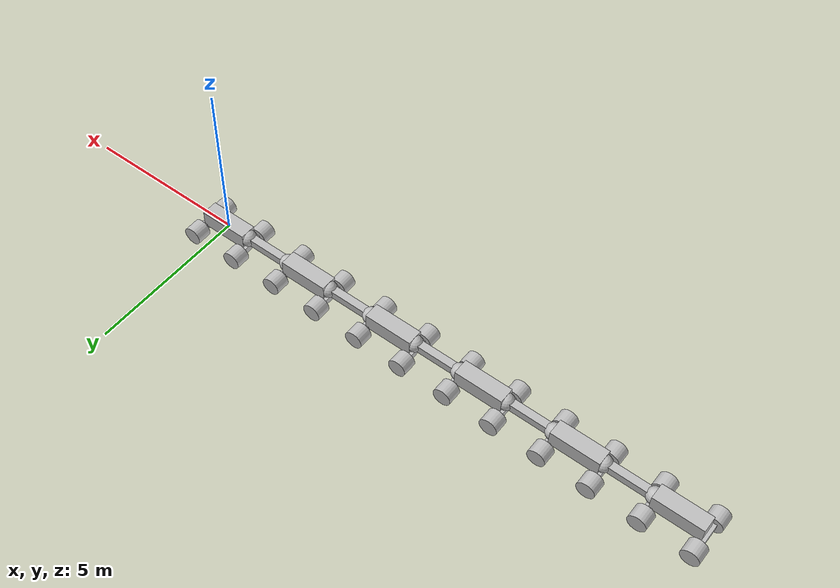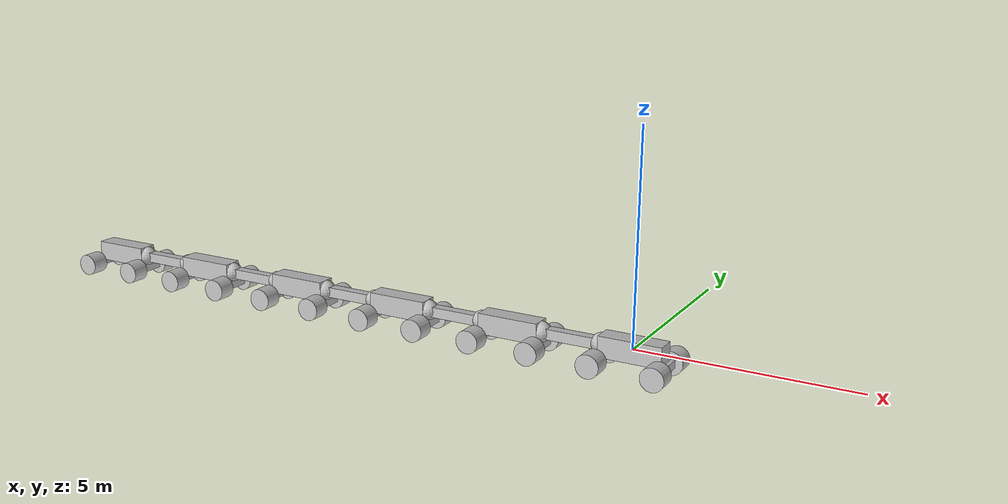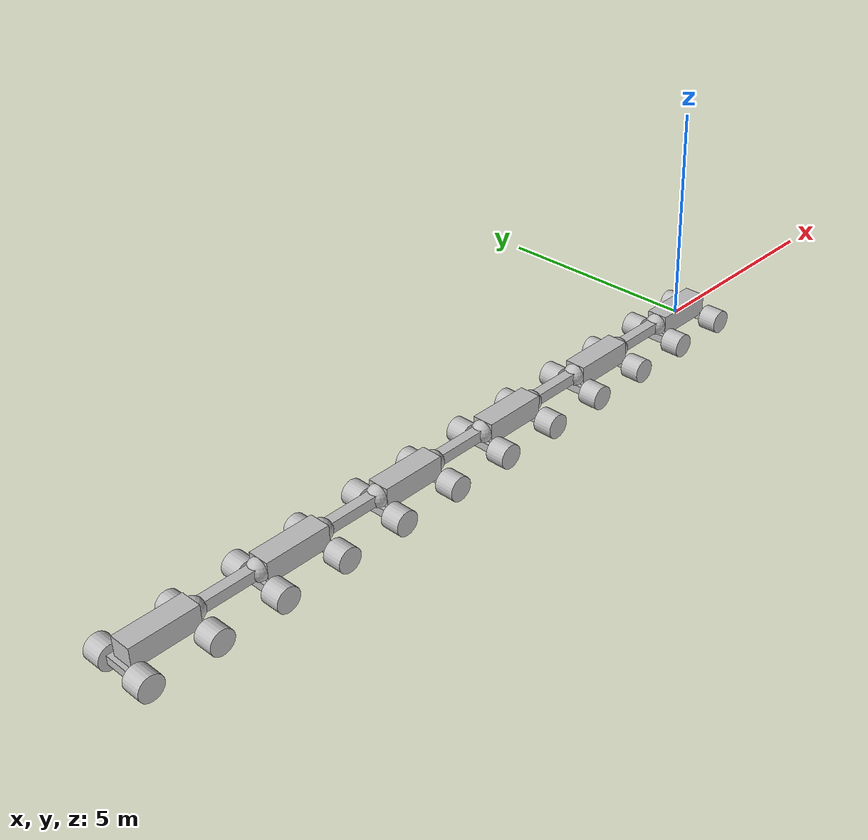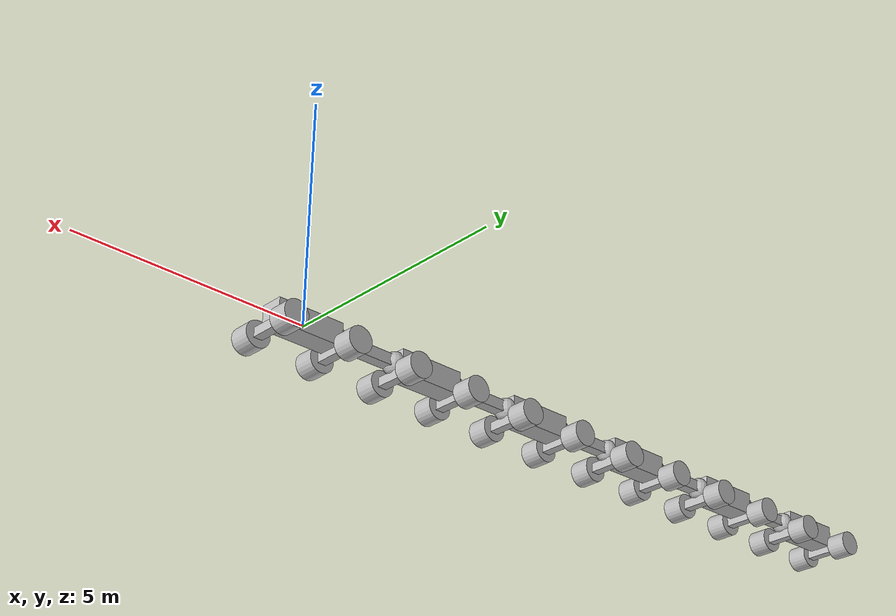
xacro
<?xml version='1.0'?>
<robot xmlns:xacro="http://www.ros.org/wiki/xacro" name="train3">

 <xacro:property name="axel_offset" value="0.75" />
 <xacro:property name="axel_offset2" value="-0.75" />
 <xacro:property name="axel_z_offset" value="-0.3" />

 <xacro:property name="connector_x" value="1.5" />
 <xacro:property name="connector_y" value="0.25" />
 <xacro:property name="connector_z" value="0.25" />
 <xacro:property name="connector_mass" value="5" />

 <xacro:property name="body_x" value="1.5" />
 <xacro:property name="body_y" value="0.5" />
 <xacro:property name="body_z" value="0.5" />
 <xacro:property name="body_mass" value="30" />

 <xacro:property name="axle_x" value="0.2" />
 <!-- actual axle y distance -->
 <!--xacro:property name="axle_y" value="1.15052" /-->
 <xacro:property name="axle_y" value="1.15052" />
 <xacro:property name="axle_z" value="0.2" />
 <xacro:property name="axle_mass" value="15" />

 <xacro:property name="dummy_radius" value="0.25" />
  <xacro:property name="pi2" value="1.570796" />

 <xacro:macro name="wheel_gazebo_macro" params="reference">
 <gazebo reference="${reference}">
   <mu1>0.0</mu1>
   <mu2>0.5</mu2>
   <fdir1>1 0 0</fdir1>
   <!-- contact sensor -->
   <sensor type="contact" name="${reference}_contact_sensor">
     <update_rate>1000.0</update_rate>
     <always_on>true</always_on>
     <contact>
       <collision>${reference}_collision</collision>
     </contact>
     <plugin name="lside_bumper_plugin" filename="libgazebo_ros_bumper.so">
       <bumperTopicName>bumper_${reference}</bumperTopicName>
       <frameName>World</frameName>
      </plugin>
   </sensor>
 </gazebo>
 </xacro:macro>

  <xacro:macro name="wheel_macro" params="name model">
    <link name="${name}">
     <inertial>
      <mass value="7.5"/>
      <origin rpy="0 0 0" xyz="0 0 0"/>
      <inertia ixx="0.49" ixy="0" ixz="0" iyy="0.49" iyz="0" izz="0.49"/>
     </inertial>
     <collision>
       <origin xyz="0 0 0" rpy="0 ${pi2} ${pi2}"/>
       <laser_retro>0</laser_retro>
       <max_contacts>10</max_contacts>
       <pose >0 0 0 0 0 0</pose>
       <geometry>
         <cylinder length="0.45" radius="0.28"/>
       </geometry>
     </collision>
     <visual name="visual">
      <origin rpy="0 ${pi2} ${pi2}" xyz="0 0 0"/>
      <geometry>
       <!--mesh filename="package://ros_robotics/meshes/${model}" scale="1 1 1"/-->
       <cylinder length="0.45" radius="0.28"/>
      </geometry>
      <material name="silver">
       <color rgba="0.75 0.75 0.75 1"/>
      </material>
     </visual>
    </link>
    <xacro:wheel_gazebo_macro reference="${name}"/>
  </xacro:macro>

 <xacro:macro name="pivot_joint_macro" params="xyz name parent child">
  <joint name="${name}" type="revolute">
   <parent link="${parent}"/>
   <child link="${child}"/>
   <origin rpy="0 0 0" xyz="${xyz}"/>
   <axis xyz="0  0  1"/>
   <limit effort="1000" lower="-0.003" upper="0.003" velocity="10"/>
   <dynamics damping="5" friction="1"/>
   <!--limit effort="-1" lower="-0.001" upper="0.001" velocity="-1"/-->
  </joint>
  <xacro:trans_macro name="${name}"/>
 </xacro:macro>

 <xacro:macro name="pivot_joint_roll_macro" params="xyz name parent child">
  <joint name="${name}" type="revolute">
   <parent link="${parent}"/>
   <child link="${child}"/>
   <origin rpy="0 0 0" xyz="${xyz}"/>
   <axis xyz="1  0  0"/>
   <limit effort="1000" lower="-0.1" upper="0.1" velocity="5"/>
   <dynamics damping="20" friction="0"/>
   <!--limit effort="-1" lower="-0.001" upper="0.001" velocity="-1"/-->
  </joint>
 </xacro:macro>

 <xacro:macro name="fixed_pivot_joint_roll_macro" params="xyz name parent child">
  <joint name="${name}" type="revolute">
   <parent link="${parent}"/>
   <child link="${child}"/>
   <origin rpy="0 0 0" xyz="${xyz}"/>
   <axis xyz="1  0  0"/>
   <limit effort="-1" lower="-0.001" upper="0.001" velocity="-1"/>
  </joint>
 </xacro:macro>

 <xacro:macro name="fixed_pivot_joint_macro" params="xyz name parent child">
  <joint name="${name}" type="revolute">
   <parent link="${parent}"/>
   <child link="${child}"/>
   <origin rpy="0 0 0" xyz="${xyz}"/>
   <axis xyz="0  0  1"/>
   <limit effort="-1" lower="-0.001" upper="0.001" velocity="-1"/>
   <!--limit effort="-1" lower="-0.001" upper="0.001" velocity="-1"/-->
  </joint>
  <xacro:trans_macro name="${name}"/>
 </xacro:macro>

<xacro:macro name="body_macro" params="xyz name">
 <link name="${name}">
  <inertial>
   <origin xyz="${xyz}"/>
   <mass value="${body_mass}"/>
   <inertia ixx="${(1/12)*body_mass*(pow(body_z,2) + pow(body_y,2))}" ixy="0" ixz="0" iyy="${(1/12)*body_mass*(pow(body_z,2) + pow(body_x,2))}" iyz="0" izz="${(1/12)*body_mass*(pow(body_x,2) + pow(body_y,2))}"/>
  </inertial>
  <visual name="visual">
   <origin rpy="0 0 0" xyz="${xyz}"/>
   <geometry>
     <box size="${body_x} 0.5 0.5" />
   </geometry>
   <material name="silver">
    <color rgba="0.75 0.75 0.75 1"/>
   </material>
  </visual>
  </link>
 </xacro:macro>

 <xacro:macro name="trans_macro" params="name">
  <transmission name="simple_trans">
   <type>transmission_interface/SimpleTransmission</type>
   <joint name="${name}">
     <hardwareInterface>hardware_interface/EffortJointInterface</hardwareInterface>
   </joint>
   <actuator name="motor_${name}">
     <mechanicalReduction>1</mechanicalReduction>
   </actuator>
  </transmission>
 </xacro:macro>

<xacro:macro name="axle_macro" params="xyz name">
 <link name="${name}">
  <inertial>
   <mass value="${axle_mass}"/>
   <origin rpy="0  0  0" xyz="0  0  0"/>
   <inertia ixx="${(1/12)*axle_mass*(pow(axle_z,2) + pow(axle_y,2))}" ixy="0" ixz="0" iyy="${(1/12)*axle_mass*(pow(axle_z,2) + pow(axle_x,2))}" iyz="0" izz="${(1/12)*axle_mass*(pow(axle_x,2) + pow(axle_y,2))}"/>
  </inertial>
  <visual name="visual">
   <origin rpy="0  0  0" xyz="0 0 0"/>
   <geometry>
    <!--mesh filename="package://ros_robotics/meshes/Front_Axle.STL" scale="1 1 1"/-->
	<box size="${axle_x} ${axle_y} ${axle_z}" />
   </geometry>
   <material name="silver">
    <color rgba="0.75 0.75 0.75 1"/>
   </material>
  </visual>
 </link>
</xacro:macro>

<xacro:macro name="joint_wheel_macro" params="xyz name parent child">
 <joint name="${name}" type="revolute">
  <parent link="${parent}"/>
  <child link="${child}"/>
  <origin rpy="0    0    0" xyz="${xyz}"/>
  <axis xyz="0  1  0"/>
  <dynamics damping="0" friction="0"/>
  <limit effort="200" lower="-1e+16" upper="1e+16" velocity="20"/>
 </joint>
 <xacro:trans_macro name="${name}"/>

</xacro:macro>

<xacro:macro name="body_joint_macro" params="xyz axis name parent child">
  <joint name="${name}" type="revolute">
   <parent link="${parent}"/>
   <child link="${child}"/>
   <origin rpy="0 0 0" xyz="${xyz}"/>
   <axis xyz="${axis}"/>
   <!--limit effort="-1" lower="-1000" upper="1000" velocity="-1"/-->
   <dynamics damping="1" friction="1"/>
   <limit effort="1000" lower="-0.3" upper="0.3" velocity="10"/>
   <!--limit effort="1000" lower="-0.001" upper="0.001" velocity="10"/-->
  </joint>
  <xacro:trans_macro name="${name}"/>
</xacro:macro>

 <xacro:macro name="prismatic_joint_macro" params="xyz name parent child">
  <joint name="${name}" type="prismatic">
   <parent link="${parent}"/>
   <child link="${child}"/>
   <origin rpy="0 0 0" xyz="${xyz}"/>
   <axis xyz="1 0 0"/>
   <!-- upper limit allows contraction, lower limit allows elongation -->
   <!--limit effort="1000" lower="-0.25" upper="0.25" velocity="0.05"/-->
   <limit effort="1000" lower="-0.3" upper="0.3" velocity="10"/>
   <dynamics damping="1" friction="1"/>
  </joint>
  <xacro:trans_macro name="${name}"/>
    <gazebo reference="${name}">
    <provideFeedback>true</provideFeedback>
  </gazebo>
  <!-- The ft_sensor plugin -->
  <gazebo>
    <plugin name="ft_sensor" filename="libgazebo_ros_ft_sensor.so">
        <updateRate>500.0</updateRate>
        <topicName>sensor_${name}</topicName>
        <jointName>${name}</jointName>
    </plugin>
  </gazebo>
</xacro:macro>

 <xacro:macro name="sensor_joint_macro" params="xyz name parent child">
  <joint name="${name}" type="revolute">
   <parent link="${parent}"/>
   <child link="${child}"/>
   <origin rpy="0 0 0" xyz="${xyz}"/>
   <axis xyz="1 0 0"/>
   <!-- upper limit allows contraction, lower limit allows elongation -->
   <!--limit effort="1000" lower="-0.25" upper="0.25" velocity="0.05"/-->
   <limit effort="1000" lower="-0.3" upper="0.3" velocity="10"/>
   <dynamics damping="1" friction="1"/>
  </joint>
  <xacro:trans_macro name="${name}"/>
    <gazebo reference="${name}">
    <provideFeedback>true</provideFeedback>
  </gazebo>
  <!-- The ft_sensor plugin -->
  <gazebo>
    <plugin name="ft_sensor" filename="libgazebo_ros_ft_sensor.so">
        <updateRate>500.0</updateRate>
        <topicName>sensor_${name}</topicName>
        <jointName>${name}</jointName>
    </plugin>
  </gazebo>
</xacro:macro>

 <xacro:macro name="fixed_joint_macro" params="xyz name parent child limit">
  <joint name="${name}" type="fixed">
   <parent link="${parent}"/>
   <child link="${child}"/>
   <origin rpy="0 0 0" xyz="${xyz}"/>
   </joint>
</xacro:macro>

<xacro:macro name="dummy_link_macro" params="xyz name radius">
 <link name="${name}">
  <inertial>
   <mass value="0.2"/>
   <inertia ixx="0.005" ixy="0" ixz="0" iyy="0.005" iyz="0" izz="0.005"/>
  </inertial>
  <visual name="visual">
   <origin rpy="0 0 0" xyz="${xyz}"/>
   <geometry>
     <sphere radius="${radius}"/>
   </geometry>
   <material name="silver">
    <color rgba="0.75 0.75 0.75 1"/>
   </material>
  </visual>
  </link>
 </xacro:macro>

<xacro:macro name="connector_link_macro" params="xyz name">
 <link name="${name}">
  <inertial>
   <mass value="${connector_mass}"/>
   <inertia ixx="${(1/12)*connector_mass*(pow(connector_z,2) + pow(connector_y,2))}" ixy="0" ixz="0" iyy="${(1/12)*connector_mass*(pow(connector_z,2) + pow(connector_x,2))}" iyz="0" izz="${(1/12)*connector_mass*(pow(connector_x,2) + pow(connector_y,2))}"/>
  </inertial>
  <visual name="visual">
   <origin rpy="0 0 0" xyz="${xyz}"/>
   <geometry>
     <box size="${connector_x} ${connector_y} ${connector_z}" />
   </geometry>
   <material name="silver">
    <color rgba="0.75 0.75 0.75 1"/>
   </material>
  </visual>
  </link>
 </xacro:macro>

<!-- connector macro with prismatic joints -->
<xacro:macro name="connector_macro" params="parent child number">

	<xacro:body_joint_macro name="body_joint_${number}_z" parent="${parent}" child="dummy_${number}_1" xyz="${-body_x/2} 0 0" axis="0 0 1"/>
	<xacro:dummy_link_macro name="dummy_${number}_1" xyz="0 0 0" radius="${dummy_radius}"/>
	<xacro:body_joint_macro name="body_joint_${number}_y" parent="dummy_${number}_1" child="dummy_${number}_2" xyz="0 0 0" axis="0 1 0"/>
	<xacro:dummy_link_macro name="dummy_${number}_2" xyz="0 0 0" radius="${dummy_radius}"/>
	<xacro:body_joint_macro name="body_joint_${number}_x" parent="dummy_${number}_2" child="dummy_${number}_3" xyz="0 0 0" axis="1 0 0"/>
	<xacro:dummy_link_macro name="dummy_${number}_3" xyz="0 0 0" radius="${dummy_radius}"/>

	<xacro:prismatic_joint_macro name="prismatic_joint_${number}" parent="dummy_${number}_3" child="connector_${number}" xyz="${-connector_x/2} 0 0"/>
	<xacro:connector_link_macro name="connector_${number}" xyz="0 0 0"/>

	<xacro:body_joint_macro name="body_joint_${number}2_y" parent="connector_${number}" child="dummy_${number}_4" xyz="${-connector_x/2} 0 0" axis="0 1 0"/>
	<xacro:dummy_link_macro name="dummy_${number}_4" xyz="0 0 0" radius="${dummy_radius}"/>
	<xacro:body_joint_macro name="body_joint_${number}2_z" parent="dummy_${number}_4" child="dummy_${number}_5" xyz="0 0 0" axis="0 0 1"/>
	<xacro:dummy_link_macro name="dummy_${number}_5" xyz="0 0 0" radius="${dummy_radius}"/>
	<xacro:fixed_joint_macro name="fixed_joint_${number}_1" parent="dummy_${number}_5" child="${child}" xyz="${-body_x/2} 0 0" limit="0.0001"/>
</xacro:macro>

<!-- Segment Macro -->
<xacro:macro name="segment_macro" params="number">
	<xacro:body_macro name="body_${number}" xyz="0 0 0"/>

	<xacro:pivot_joint_macro name="pivot_joint_${number}_1" parent="body_${number}" child="pivot_dummy_${number}_1" xyz="${axel_offset} 0 ${axel_z_offset}"/>
	<xacro:dummy_link_macro name="pivot_dummy_${number}_1" xyz="0 0 0" radius="0.1"/>
	<xacro:pivot_joint_roll_macro name="pivot_joint_roll_${number}_1" parent="pivot_dummy_${number}_1" child="axle_${number}_1" xyz="0 0 0"/>
	<xacro:axle_macro name="axle_${number}_1" xyz="0 0 0"/>

	<xacro:joint_wheel_macro xyz="0  ${axle_y/2} 0" name="joint_wheel_${number}_1_1" parent="axle_${number}_1" child="wheel_${number}_1_1"/>
	<xacro:joint_wheel_macro xyz="0  -${axle_y/2} 0" name="joint_wheel_${number}_1_2" parent="axle_${number}_1" child="wheel_${number}_1_2"/>
	<xacro:wheel_macro name="wheel_${number}_1_1" model="frostyboy_wheel.STL"/>
	<xacro:wheel_macro name="wheel_${number}_1_2" model="frostyboy_wheel.STL"/>

	<xacro:pivot_joint_macro name="pivot_joint_${number}_2" parent="body_${number}" child="pivot_dummy_${number}_2" xyz="${axel_offset2} 0 ${axel_z_offset}"/>
	<xacro:dummy_link_macro name="pivot_dummy_${number}_2" xyz="0 0 0" radius="0.1"/>
	<xacro:fixed_pivot_joint_roll_macro name="pivot_joint_roll_${number}_2" parent="pivot_dummy_${number}_2" child="axle_${number}_2" xyz="0 0 0"/>
	<xacro:axle_macro name="axle_${number}_2" xyz="0 0 0"/>

	<xacro:joint_wheel_macro xyz="0  ${axle_y/2} 0" name="joint_wheel_${number}_2_1" parent="axle_${number}_2" child="wheel_${number}_2_1"/>
	<xacro:joint_wheel_macro xyz="0  -${axle_y/2} 0" name="joint_wheel_${number}_2_2" parent="axle_${number}_2" child="wheel_${number}_2_2"/>
	<xacro:wheel_macro name="wheel_${number}_2_1" model="frostyboy_wheel.STL"/>
	<xacro:wheel_macro name="wheel_${number}_2_2" model="frostyboy_wheel.STL"/>
</xacro:macro>

<!-- The Actual Vehicle -->
<xacro:segment_macro number="1"/>

<xacro:connector_macro parent="body_1" child="body_2" number="1"  />
<xacro:segment_macro number="2"/>

<xacro:connector_macro parent="body_2" child="body_3" number="2"  />
<xacro:segment_macro number="3"/>

<xacro:connector_macro parent="body_3" child="body_4" number="3"  />
<xacro:segment_macro number="4"/>

<xacro:connector_macro parent="body_4" child="body_5" number="4"  />
<xacro:segment_macro number="5"/>

<xacro:connector_macro parent="body_5" child="body_6" number="5"  />
<xacro:segment_macro number="6"/>

<!-- run this in order to check the URDF without launching gazebo -->
<!-- https://answers.ros.org/question/258420/ball-joint-in-urdf/ -->
<!-- "check_urdf <(xacro inorder train5.urdf.xacro)" but put two dashes before inorder-->

<gazebo>
  <plugin name="gazebo_ros_control" filename="libgazebo_ros_control.so">
   <robotNamespace>/dd_robot</robotNamespace>
   <robotSimType>gazebo_ros_control/DefaultRobotHWSim</robotSimType>
   <legacyModeNS>true</legacyModeNS>
  </plugin>
</gazebo>

<gazebo>
  <!--plugin name="hello_world" filename="libhello_world.so"/-->
  <plugin name="model_push" filename="./libmodel_push.so"/>
</gazebo>

</robot>
